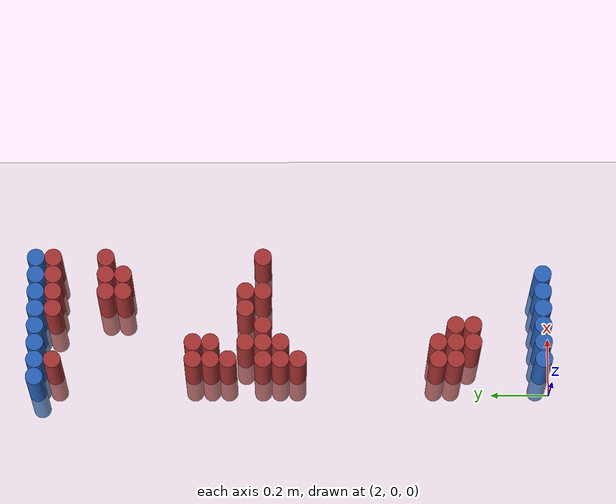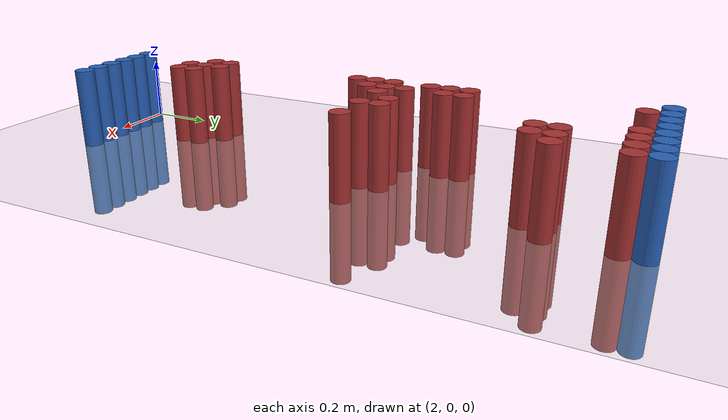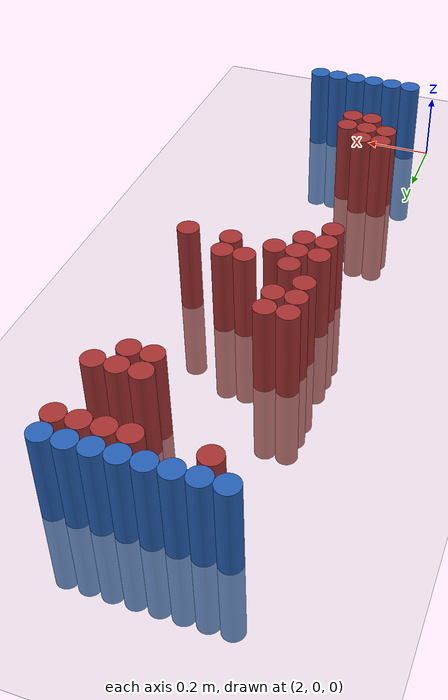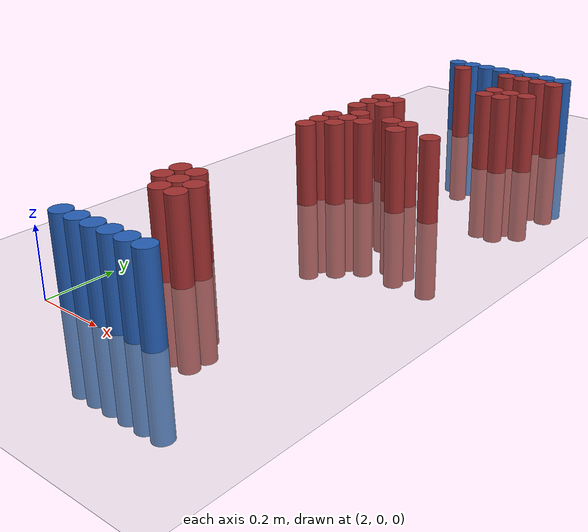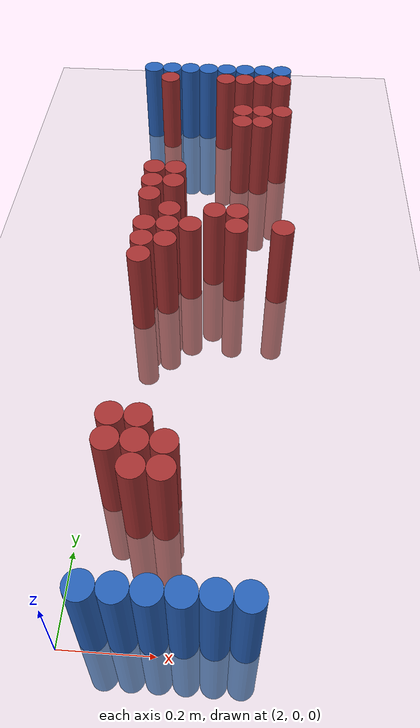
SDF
<sdf version="1.6">
 <world name="default">
  <model name="ground_plane">
   <static>1</static>
   <link name="link">
    <collision name="collision">
     <geometry><plane><normal>0 0 1</normal><size>100 100</size></plane></geometry>
     <surface><friction><ode><mu>100</mu><mu2>50</mu2></ode></friction></surface>
    </collision>
    <visual name="visual">
     <cast_shadows>0</cast_shadows>
     <geometry><plane><normal>0 0 1</normal><size>100 100</size></plane></geometry>
     <material>
      <script><uri>file://media/materials/scripts/gazebo.material</uri><name>Gazebo/Grey</name></script>
     </material>
    </visual>
   </link>
  </model>
  <model name="unit_cylinder_94">
   <static>1</static>
   <pose>2.010000 1.770000 0.000000 0.000000 0.000000 0.000000</pose>
   <link name="link">
    <inertial>
     <mass>1</mass>
     <inertia><ixx>0.145833</ixx><ixy>0</ixy><ixz>0</ixz><iyy>0.145833</iyy><iyz>0</iyz><izz>0.125</izz></inertia>
    </inertial>
    <collision name="collision">
     <geometry><cylinder><radius>0.030000</radius><length>0.5</length></cylinder></geometry>
    </collision>
    <visual name="visual">
     <geometry><cylinder><radius>0.030000</radius><length>0.5</length></cylinder></geometry>
     <material>
      <ambient>0.152000 0.379000 0.720000 1</ambient>
      <diffuse>0.152000 0.379000 0.720000 1</diffuse>
     </material>
     <material>
      <script><name>Gazebo/Grey</name><uri>file://media/materials/scripts/gazebo.material</uri></script>
     </material>
    </visual>
   </link>
  </model>
  <model name="unit_cylinder_95">
   <static>1</static>
   <pose>2.070000 1.770000 0.000000 0.000000 0.000000 0.000000</pose>
   <link name="link">
    <inertial>
     <mass>1</mass>
     <inertia><ixx>0.145833</ixx><ixy>0</ixy><ixz>0</ixz><iyy>0.145833</iyy><iyz>0</iyz><izz>0.125</izz></inertia>
    </inertial>
    <collision name="collision">
     <geometry><cylinder><radius>0.030000</radius><length>0.5</length></cylinder></geometry>
    </collision>
    <visual name="visual">
     <geometry><cylinder><radius>0.030000</radius><length>0.5</length></cylinder></geometry>
     <material>
      <ambient>0.152000 0.379000 0.720000 1</ambient>
      <diffuse>0.152000 0.379000 0.720000 1</diffuse>
     </material>
     <material>
      <script><name>Gazebo/Grey</name><uri>file://media/materials/scripts/gazebo.material</uri></script>
     </material>
    </visual>
   </link>
  </model>
  <model name="unit_cylinder_96">
   <static>1</static>
   <pose>2.130000 1.770000 0.000000 0.000000 0.000000 0.000000</pose>
   <link name="link">
    <inertial>
     <mass>1</mass>
     <inertia><ixx>0.145833</ixx><ixy>0</ixy><ixz>0</ixz><iyy>0.145833</iyy><iyz>0</iyz><izz>0.125</izz></inertia>
    </inertial>
    <collision name="collision">
     <geometry><cylinder><radius>0.030000</radius><length>0.5</length></cylinder></geometry>
    </collision>
    <visual name="visual">
     <geometry><cylinder><radius>0.030000</radius><length>0.5</length></cylinder></geometry>
     <material>
      <ambient>0.152000 0.379000 0.720000 1</ambient>
      <diffuse>0.152000 0.379000 0.720000 1</diffuse>
     </material>
     <material>
      <script><name>Gazebo/Grey</name><uri>file://media/materials/scripts/gazebo.material</uri></script>
     </material>
    </visual>
   </link>
  </model>
  <model name="unit_cylinder_97">
   <static>1</static>
   <pose>2.190000 1.770000 0.000000 0.000000 0.000000 0.000000</pose>
   <link name="link">
    <inertial>
     <mass>1</mass>
     <inertia><ixx>0.145833</ixx><ixy>0</ixy><ixz>0</ixz><iyy>0.145833</iyy><iyz>0</iyz><izz>0.125</izz></inertia>
    </inertial>
    <collision name="collision">
     <geometry><cylinder><radius>0.030000</radius><length>0.5</length></cylinder></geometry>
    </collision>
    <visual name="visual">
     <geometry><cylinder><radius>0.030000</radius><length>0.5</length></cylinder></geometry>
     <material>
      <ambient>0.152000 0.379000 0.720000 1</ambient>
      <diffuse>0.152000 0.379000 0.720000 1</diffuse>
     </material>
     <material>
      <script><name>Gazebo/Grey</name><uri>file://media/materials/scripts/gazebo.material</uri></script>
     </material>
    </visual>
   </link>
  </model>
  <model name="unit_cylinder_98">
   <static>1</static>
   <pose>2.250000 1.770000 0.000000 0.000000 0.000000 0.000000</pose>
   <link name="link">
    <inertial>
     <mass>1</mass>
     <inertia><ixx>0.145833</ixx><ixy>0</ixy><ixz>0</ixz><iyy>0.145833</iyy><iyz>0</iyz><izz>0.125</izz></inertia>
    </inertial>
    <collision name="collision">
     <geometry><cylinder><radius>0.030000</radius><length>0.5</length></cylinder></geometry>
    </collision>
    <visual name="visual">
     <geometry><cylinder><radius>0.030000</radius><length>0.5</length></cylinder></geometry>
     <material>
      <ambient>0.152000 0.379000 0.720000 1</ambient>
      <diffuse>0.152000 0.379000 0.720000 1</diffuse>
     </material>
     <material>
      <script><name>Gazebo/Grey</name><uri>file://media/materials/scripts/gazebo.material</uri></script>
     </material>
    </visual>
   </link>
  </model>
  <model name="unit_cylinder_99">
   <static>1</static>
   <pose>2.310000 1.770000 0.000000 0.000000 0.000000 0.000000</pose>
   <link name="link">
    <inertial>
     <mass>1</mass>
     <inertia><ixx>0.145833</ixx><ixy>0</ixy><ixz>0</ixz><iyy>0.145833</iyy><iyz>0</iyz><izz>0.125</izz></inertia>
    </inertial>
    <collision name="collision">
     <geometry><cylinder><radius>0.030000</radius><length>0.5</length></cylinder></geometry>
    </collision>
    <visual name="visual">
     <geometry><cylinder><radius>0.030000</radius><length>0.5</length></cylinder></geometry>
     <material>
      <ambient>0.152000 0.379000 0.720000 1</ambient>
      <diffuse>0.152000 0.379000 0.720000 1</diffuse>
     </material>
     <material>
      <script><name>Gazebo/Grey</name><uri>file://media/materials/scripts/gazebo.material</uri></script>
     </material>
    </visual>
   </link>
  </model>
  <model name="unit_cylinder_100">
   <static>1</static>
   <pose>2.370000 1.770000 0.000000 0.000000 0.000000 0.000000</pose>
   <link name="link">
    <inertial>
     <mass>1</mass>
     <inertia><ixx>0.145833</ixx><ixy>0</ixy><ixz>0</ixz><iyy>0.145833</iyy><iyz>0</iyz><izz>0.125</izz></inertia>
    </inertial>
    <collision name="collision">
     <geometry><cylinder><radius>0.030000</radius><length>0.5</length></cylinder></geometry>
    </collision>
    <visual name="visual">
     <geometry><cylinder><radius>0.030000</radius><length>0.5</length></cylinder></geometry>
     <material>
      <ambient>0.152000 0.379000 0.720000 1</ambient>
      <diffuse>0.152000 0.379000 0.720000 1</diffuse>
     </material>
     <material>
      <script><name>Gazebo/Grey</name><uri>file://media/materials/scripts/gazebo.material</uri></script>
     </material>
    </visual>
   </link>
  </model>
  <model name="unit_cylinder_101">
   <static>1</static>
   <pose>2.430000 1.770000 0.000000 0.000000 0.000000 0.000000</pose>
   <link name="link">
    <inertial>
     <mass>1</mass>
     <inertia><ixx>0.145833</ixx><ixy>0</ixy><ixz>0</ixz><iyy>0.145833</iyy><iyz>0</iyz><izz>0.125</izz></inertia>
    </inertial>
    <collision name="collision">
     <geometry><cylinder><radius>0.030000</radius><length>0.5</length></cylinder></geometry>
    </collision>
    <visual name="visual">
     <geometry><cylinder><radius>0.030000</radius><length>0.5</length></cylinder></geometry>
     <material>
      <ambient>0.152000 0.379000 0.720000 1</ambient>
      <diffuse>0.152000 0.379000 0.720000 1</diffuse>
     </material>
     <material>
      <script><name>Gazebo/Grey</name><uri>file://media/materials/scripts/gazebo.material</uri></script>
     </material>
    </visual>
   </link>
  </model>
  <model name="unit_cylinder_125">
   <static>1</static>
   <pose>2.070000 1.710000 0.000000 0.000000 0.000000 0.000000</pose>
   <link name="link">
    <inertial>
     <mass>1</mass>
     <inertia><ixx>0.145833</ixx><ixy>0</ixy><ixz>0</ixz><iyy>0.145833</iyy><iyz>0</iyz><izz>0.125</izz></inertia>
    </inertial>
    <collision name="collision">
     <geometry><cylinder><radius>0.030000</radius><length>0.5</length></cylinder></geometry>
    </collision>
    <visual name="visual">
     <geometry><cylinder><radius>0.030000</radius><length>0.5</length></cylinder></geometry>
     <material>
      <ambient>0.648000 0.192000 0.192000 1</ambient>
      <diffuse>0.648000 0.192000 0.192000 1</diffuse>
     </material>
     <material>
      <script><name>Gazebo/Grey</name><uri>file://media/materials/scripts/gazebo.material</uri></script>
     </material>
    </visual>
   </link>
  </model>
  <model name="unit_cylinder_126">
   <static>1</static>
   <pose>2.250000 1.710000 0.000000 0.000000 0.000000 0.000000</pose>
   <link name="link">
    <inertial>
     <mass>1</mass>
     <inertia><ixx>0.145833</ixx><ixy>0</ixy><ixz>0</ixz><iyy>0.145833</iyy><iyz>0</iyz><izz>0.125</izz></inertia>
    </inertial>
    <collision name="collision">
     <geometry><cylinder><radius>0.030000</radius><length>0.5</length></cylinder></geometry>
    </collision>
    <visual name="visual">
     <geometry><cylinder><radius>0.030000</radius><length>0.5</length></cylinder></geometry>
     <material>
      <ambient>0.648000 0.192000 0.192000 1</ambient>
      <diffuse>0.648000 0.192000 0.192000 1</diffuse>
     </material>
     <material>
      <script><name>Gazebo/Grey</name><uri>file://media/materials/scripts/gazebo.material</uri></script>
     </material>
    </visual>
   </link>
  </model>
  <model name="unit_cylinder_127">
   <static>1</static>
   <pose>2.310000 1.710000 0.000000 0.000000 0.000000 0.000000</pose>
   <link name="link">
    <inertial>
     <mass>1</mass>
     <inertia><ixx>0.145833</ixx><ixy>0</ixy><ixz>0</ixz><iyy>0.145833</iyy><iyz>0</iyz><izz>0.125</izz></inertia>
    </inertial>
    <collision name="collision">
     <geometry><cylinder><radius>0.030000</radius><length>0.5</length></cylinder></geometry>
    </collision>
    <visual name="visual">
     <geometry><cylinder><radius>0.030000</radius><length>0.5</length></cylinder></geometry>
     <material>
      <ambient>0.648000 0.192000 0.192000 1</ambient>
      <diffuse>0.648000 0.192000 0.192000 1</diffuse>
     </material>
     <material>
      <script><name>Gazebo/Grey</name><uri>file://media/materials/scripts/gazebo.material</uri></script>
     </material>
    </visual>
   </link>
  </model>
  <model name="unit_cylinder_128">
   <static>1</static>
   <pose>2.370000 1.710000 0.000000 0.000000 0.000000 0.000000</pose>
   <link name="link">
    <inertial>
     <mass>1</mass>
     <inertia><ixx>0.145833</ixx><ixy>0</ixy><ixz>0</ixz><iyy>0.145833</iyy><iyz>0</iyz><izz>0.125</izz></inertia>
    </inertial>
    <collision name="collision">
     <geometry><cylinder><radius>0.030000</radius><length>0.5</length></cylinder></geometry>
    </collision>
    <visual name="visual">
     <geometry><cylinder><radius>0.030000</radius><length>0.5</length></cylinder></geometry>
     <material>
      <ambient>0.648000 0.192000 0.192000 1</ambient>
      <diffuse>0.648000 0.192000 0.192000 1</diffuse>
     </material>
     <material>
      <script><name>Gazebo/Grey</name><uri>file://media/materials/scripts/gazebo.material</uri></script>
     </material>
    </visual>
   </link>
  </model>
  <model name="unit_cylinder_129">
   <static>1</static>
   <pose>2.430000 1.710000 0.000000 0.000000 0.000000 0.000000</pose>
   <link name="link">
    <inertial>
     <mass>1</mass>
     <inertia><ixx>0.145833</ixx><ixy>0</ixy><ixz>0</ixz><iyy>0.145833</iyy><iyz>0</iyz><izz>0.125</izz></inertia>
    </inertial>
    <collision name="collision">
     <geometry><cylinder><radius>0.030000</radius><length>0.5</length></cylinder></geometry>
    </collision>
    <visual name="visual">
     <geometry><cylinder><radius>0.030000</radius><length>0.5</length></cylinder></geometry>
     <material>
      <ambient>0.648000 0.192000 0.192000 1</ambient>
      <diffuse>0.648000 0.192000 0.192000 1</diffuse>
     </material>
     <material>
      <script><name>Gazebo/Grey</name><uri>file://media/materials/scripts/gazebo.material</uri></script>
     </material>
    </visual>
   </link>
  </model>
  <model name="unit_cylinder_154">
   <static>1</static>
   <pose>2.310000 1.530000 0.000000 0.000000 0.000000 0.000000</pose>
   <link name="link">
    <inertial>
     <mass>1</mass>
     <inertia><ixx>0.145833</ixx><ixy>0</ixy><ixz>0</ixz><iyy>0.145833</iyy><iyz>0</iyz><izz>0.125</izz></inertia>
    </inertial>
    <collision name="collision">
     <geometry><cylinder><radius>0.030000</radius><length>0.5</length></cylinder></geometry>
    </collision>
    <visual name="visual">
     <geometry><cylinder><radius>0.030000</radius><length>0.5</length></cylinder></geometry>
     <material>
      <ambient>0.648000 0.192000 0.192000 1</ambient>
      <diffuse>0.648000 0.192000 0.192000 1</diffuse>
     </material>
     <material>
      <script><name>Gazebo/Grey</name><uri>file://media/materials/scripts/gazebo.material</uri></script>
     </material>
    </visual>
   </link>
  </model>
  <model name="unit_cylinder_155">
   <static>1</static>
   <pose>2.370000 1.530000 0.000000 0.000000 0.000000 0.000000</pose>
   <link name="link">
    <inertial>
     <mass>1</mass>
     <inertia><ixx>0.145833</ixx><ixy>0</ixy><ixz>0</ixz><iyy>0.145833</iyy><iyz>0</iyz><izz>0.125</izz></inertia>
    </inertial>
    <collision name="collision">
     <geometry><cylinder><radius>0.030000</radius><length>0.5</length></cylinder></geometry>
    </collision>
    <visual name="visual">
     <geometry><cylinder><radius>0.030000</radius><length>0.5</length></cylinder></geometry>
     <material>
      <ambient>0.648000 0.192000 0.192000 1</ambient>
      <diffuse>0.648000 0.192000 0.192000 1</diffuse>
     </material>
     <material>
      <script><name>Gazebo/Grey</name><uri>file://media/materials/scripts/gazebo.material</uri></script>
     </material>
    </visual>
   </link>
  </model>
  <model name="unit_cylinder_156">
   <static>1</static>
   <pose>2.430000 1.530000 0.000000 0.000000 0.000000 0.000000</pose>
   <link name="link">
    <inertial>
     <mass>1</mass>
     <inertia><ixx>0.145833</ixx><ixy>0</ixy><ixz>0</ixz><iyy>0.145833</iyy><iyz>0</iyz><izz>0.125</izz></inertia>
    </inertial>
    <collision name="collision">
     <geometry><cylinder><radius>0.030000</radius><length>0.5</length></cylinder></geometry>
    </collision>
    <visual name="visual">
     <geometry><cylinder><radius>0.030000</radius><length>0.5</length></cylinder></geometry>
     <material>
      <ambient>0.648000 0.192000 0.192000 1</ambient>
      <diffuse>0.648000 0.192000 0.192000 1</diffuse>
     </material>
     <material>
      <script><name>Gazebo/Grey</name><uri>file://media/materials/scripts/gazebo.material</uri></script>
     </material>
    </visual>
   </link>
  </model>
  <model name="unit_cylinder_165">
   <static>1</static>
   <pose>2.310000 1.470000 0.000000 0.000000 0.000000 0.000000</pose>
   <link name="link">
    <inertial>
     <mass>1</mass>
     <inertia><ixx>0.145833</ixx><ixy>0</ixy><ixz>0</ixz><iyy>0.145833</iyy><iyz>0</iyz><izz>0.125</izz></inertia>
    </inertial>
    <collision name="collision">
     <geometry><cylinder><radius>0.030000</radius><length>0.5</length></cylinder></geometry>
    </collision>
    <visual name="visual">
     <geometry><cylinder><radius>0.030000</radius><length>0.5</length></cylinder></geometry>
     <material>
      <ambient>0.648000 0.192000 0.192000 1</ambient>
      <diffuse>0.648000 0.192000 0.192000 1</diffuse>
     </material>
     <material>
      <script><name>Gazebo/Grey</name><uri>file://media/materials/scripts/gazebo.material</uri></script>
     </material>
    </visual>
   </link>
  </model>
  <model name="unit_cylinder_166">
   <static>1</static>
   <pose>2.370000 1.470000 0.000000 0.000000 0.000000 0.000000</pose>
   <link name="link">
    <inertial>
     <mass>1</mass>
     <inertia><ixx>0.145833</ixx><ixy>0</ixy><ixz>0</ixz><iyy>0.145833</iyy><iyz>0</iyz><izz>0.125</izz></inertia>
    </inertial>
    <collision name="collision">
     <geometry><cylinder><radius>0.030000</radius><length>0.5</length></cylinder></geometry>
    </collision>
    <visual name="visual">
     <geometry><cylinder><radius>0.030000</radius><length>0.5</length></cylinder></geometry>
     <material>
      <ambient>0.648000 0.192000 0.192000 1</ambient>
      <diffuse>0.648000 0.192000 0.192000 1</diffuse>
     </material>
     <material>
      <script><name>Gazebo/Grey</name><uri>file://media/materials/scripts/gazebo.material</uri></script>
     </material>
    </visual>
   </link>
  </model>
  <model name="unit_cylinder_183">
   <static>1</static>
   <pose>2.070000 1.230000 0.000000 0.000000 0.000000 0.000000</pose>
   <link name="link">
    <inertial>
     <mass>1</mass>
     <inertia><ixx>0.145833</ixx><ixy>0</ixy><ixz>0</ixz><iyy>0.145833</iyy><iyz>0</iyz><izz>0.125</izz></inertia>
    </inertial>
    <collision name="collision">
     <geometry><cylinder><radius>0.030000</radius><length>0.5</length></cylinder></geometry>
    </collision>
    <visual name="visual">
     <geometry><cylinder><radius>0.030000</radius><length>0.5</length></cylinder></geometry>
     <material>
      <ambient>0.648000 0.192000 0.192000 1</ambient>
      <diffuse>0.648000 0.192000 0.192000 1</diffuse>
     </material>
     <material>
      <script><name>Gazebo/Grey</name><uri>file://media/materials/scripts/gazebo.material</uri></script>
     </material>
    </visual>
   </link>
  </model>
  <model name="unit_cylinder_184">
   <static>1</static>
   <pose>2.130000 1.230000 0.000000 0.000000 0.000000 0.000000</pose>
   <link name="link">
    <inertial>
     <mass>1</mass>
     <inertia><ixx>0.145833</ixx><ixy>0</ixy><ixz>0</ixz><iyy>0.145833</iyy><iyz>0</iyz><izz>0.125</izz></inertia>
    </inertial>
    <collision name="collision">
     <geometry><cylinder><radius>0.030000</radius><length>0.5</length></cylinder></geometry>
    </collision>
    <visual name="visual">
     <geometry><cylinder><radius>0.030000</radius><length>0.5</length></cylinder></geometry>
     <material>
      <ambient>0.648000 0.192000 0.192000 1</ambient>
      <diffuse>0.648000 0.192000 0.192000 1</diffuse>
     </material>
     <material>
      <script><name>Gazebo/Grey</name><uri>file://media/materials/scripts/gazebo.material</uri></script>
     </material>
    </visual>
   </link>
  </model>
  <model name="unit_cylinder_190">
   <static>1</static>
   <pose>2.070000 1.170000 0.000000 0.000000 0.000000 0.000000</pose>
   <link name="link">
    <inertial>
     <mass>1</mass>
     <inertia><ixx>0.145833</ixx><ixy>0</ixy><ixz>0</ixz><iyy>0.145833</iyy><iyz>0</iyz><izz>0.125</izz></inertia>
    </inertial>
    <collision name="collision">
     <geometry><cylinder><radius>0.030000</radius><length>0.5</length></cylinder></geometry>
    </collision>
    <visual name="visual">
     <geometry><cylinder><radius>0.030000</radius><length>0.5</length></cylinder></geometry>
     <material>
      <ambient>0.648000 0.192000 0.192000 1</ambient>
      <diffuse>0.648000 0.192000 0.192000 1</diffuse>
     </material>
     <material>
      <script><name>Gazebo/Grey</name><uri>file://media/materials/scripts/gazebo.material</uri></script>
     </material>
    </visual>
   </link>
  </model>
  <model name="unit_cylinder_191">
   <static>1</static>
   <pose>2.130000 1.170000 0.000000 0.000000 0.000000 0.000000</pose>
   <link name="link">
    <inertial>
     <mass>1</mass>
     <inertia><ixx>0.145833</ixx><ixy>0</ixy><ixz>0</ixz><iyy>0.145833</iyy><iyz>0</iyz><izz>0.125</izz></inertia>
    </inertial>
    <collision name="collision">
     <geometry><cylinder><radius>0.030000</radius><length>0.5</length></cylinder></geometry>
    </collision>
    <visual name="visual">
     <geometry><cylinder><radius>0.030000</radius><length>0.5</length></cylinder></geometry>
     <material>
      <ambient>0.648000 0.192000 0.192000 1</ambient>
      <diffuse>0.648000 0.192000 0.192000 1</diffuse>
     </material>
     <material>
      <script><name>Gazebo/Grey</name><uri>file://media/materials/scripts/gazebo.material</uri></script>
     </material>
    </visual>
   </link>
  </model>
  <model name="unit_cylinder_201">
   <static>1</static>
   <pose>2.070000 1.110000 0.000000 0.000000 0.000000 0.000000</pose>
   <link name="link">
    <inertial>
     <mass>1</mass>
     <inertia><ixx>0.145833</ixx><ixy>0</ixy><ixz>0</ixz><iyy>0.145833</iyy><iyz>0</iyz><izz>0.125</izz></inertia>
    </inertial>
    <collision name="collision">
     <geometry><cylinder><radius>0.030000</radius><length>0.5</length></cylinder></geometry>
    </collision>
    <visual name="visual">
     <geometry><cylinder><radius>0.030000</radius><length>0.5</length></cylinder></geometry>
     <material>
      <ambient>0.648000 0.192000 0.192000 1</ambient>
      <diffuse>0.648000 0.192000 0.192000 1</diffuse>
     </material>
     <material>
      <script><name>Gazebo/Grey</name><uri>file://media/materials/scripts/gazebo.material</uri></script>
     </material>
    </visual>
   </link>
  </model>
  <model name="unit_cylinder_210">
   <static>1</static>
   <pose>2.130000 1.050000 0.000000 0.000000 0.000000 0.000000</pose>
   <link name="link">
    <inertial>
     <mass>1</mass>
     <inertia><ixx>0.145833</ixx><ixy>0</ixy><ixz>0</ixz><iyy>0.145833</iyy><iyz>0</iyz><izz>0.125</izz></inertia>
    </inertial>
    <collision name="collision">
     <geometry><cylinder><radius>0.030000</radius><length>0.5</length></cylinder></geometry>
    </collision>
    <visual name="visual">
     <geometry><cylinder><radius>0.030000</radius><length>0.5</length></cylinder></geometry>
     <material>
      <ambient>0.648000 0.192000 0.192000 1</ambient>
      <diffuse>0.648000 0.192000 0.192000 1</diffuse>
     </material>
     <material>
      <script><name>Gazebo/Grey</name><uri>file://media/materials/scripts/gazebo.material</uri></script>
     </material>
    </visual>
   </link>
  </model>
  <model name="unit_cylinder_211">
   <static>1</static>
   <pose>2.250000 1.050000 0.000000 0.000000 0.000000 0.000000</pose>
   <link name="link">
    <inertial>
     <mass>1</mass>
     <inertia><ixx>0.145833</ixx><ixy>0</ixy><ixz>0</ixz><iyy>0.145833</iyy><iyz>0</iyz><izz>0.125</izz></inertia>
    </inertial>
    <collision name="collision">
     <geometry><cylinder><radius>0.030000</radius><length>0.5</length></cylinder></geometry>
    </collision>
    <visual name="visual">
     <geometry><cylinder><radius>0.030000</radius><length>0.5</length></cylinder></geometry>
     <material>
      <ambient>0.648000 0.192000 0.192000 1</ambient>
      <diffuse>0.648000 0.192000 0.192000 1</diffuse>
     </material>
     <material>
      <script><name>Gazebo/Grey</name><uri>file://media/materials/scripts/gazebo.material</uri></script>
     </material>
    </visual>
   </link>
  </model>
  <model name="unit_cylinder_212">
   <static>1</static>
   <pose>2.310000 1.050000 0.000000 0.000000 0.000000 0.000000</pose>
   <link name="link">
    <inertial>
     <mass>1</mass>
     <inertia><ixx>0.145833</ixx><ixy>0</ixy><ixz>0</ixz><iyy>0.145833</iyy><iyz>0</iyz><izz>0.125</izz></inertia>
    </inertial>
    <collision name="collision">
     <geometry><cylinder><radius>0.030000</radius><length>0.5</length></cylinder></geometry>
    </collision>
    <visual name="visual">
     <geometry><cylinder><radius>0.030000</radius><length>0.5</length></cylinder></geometry>
     <material>
      <ambient>0.648000 0.192000 0.192000 1</ambient>
      <diffuse>0.648000 0.192000 0.192000 1</diffuse>
     </material>
     <material>
      <script><name>Gazebo/Grey</name><uri>file://media/materials/scripts/gazebo.material</uri></script>
     </material>
    </visual>
   </link>
  </model>
  <model name="unit_cylinder_219">
   <static>1</static>
   <pose>2.070000 0.990000 0.000000 0.000000 0.000000 0.000000</pose>
   <link name="link">
    <inertial>
     <mass>1</mass>
     <inertia><ixx>0.145833</ixx><ixy>0</ixy><ixz>0</ixz><iyy>0.145833</iyy><iyz>0</iyz><izz>0.125</izz></inertia>
    </inertial>
    <collision name="collision">
     <geometry><cylinder><radius>0.030000</radius><length>0.5</length></cylinder></geometry>
    </collision>
    <visual name="visual">
     <geometry><cylinder><radius>0.030000</radius><length>0.5</length></cylinder></geometry>
     <material>
      <ambient>0.648000 0.192000 0.192000 1</ambient>
      <diffuse>0.648000 0.192000 0.192000 1</diffuse>
     </material>
     <material>
      <script><name>Gazebo/Grey</name><uri>file://media/materials/scripts/gazebo.material</uri></script>
     </material>
    </visual>
   </link>
  </model>
  <model name="unit_cylinder_220">
   <static>1</static>
   <pose>2.130000 0.990000 0.000000 0.000000 0.000000 0.000000</pose>
   <link name="link">
    <inertial>
     <mass>1</mass>
     <inertia><ixx>0.145833</ixx><ixy>0</ixy><ixz>0</ixz><iyy>0.145833</iyy><iyz>0</iyz><izz>0.125</izz></inertia>
    </inertial>
    <collision name="collision">
     <geometry><cylinder><radius>0.030000</radius><length>0.5</length></cylinder></geometry>
    </collision>
    <visual name="visual">
     <geometry><cylinder><radius>0.030000</radius><length>0.5</length></cylinder></geometry>
     <material>
      <ambient>0.648000 0.192000 0.192000 1</ambient>
      <diffuse>0.648000 0.192000 0.192000 1</diffuse>
     </material>
     <material>
      <script><name>Gazebo/Grey</name><uri>file://media/materials/scripts/gazebo.material</uri></script>
     </material>
    </visual>
   </link>
  </model>
  <model name="unit_cylinder_221">
   <static>1</static>
   <pose>2.190000 0.990000 0.000000 0.000000 0.000000 0.000000</pose>
   <link name="link">
    <inertial>
     <mass>1</mass>
     <inertia><ixx>0.145833</ixx><ixy>0</ixy><ixz>0</ixz><iyy>0.145833</iyy><iyz>0</iyz><izz>0.125</izz></inertia>
    </inertial>
    <collision name="collision">
     <geometry><cylinder><radius>0.030000</radius><length>0.5</length></cylinder></geometry>
    </collision>
    <visual name="visual">
     <geometry><cylinder><radius>0.030000</radius><length>0.5</length></cylinder></geometry>
     <material>
      <ambient>0.648000 0.192000 0.192000 1</ambient>
      <diffuse>0.648000 0.192000 0.192000 1</diffuse>
     </material>
     <material>
      <script><name>Gazebo/Grey</name><uri>file://media/materials/scripts/gazebo.material</uri></script>
     </material>
    </visual>
   </link>
  </model>
  <model name="unit_cylinder_222">
   <static>1</static>
   <pose>2.310000 0.990000 0.000000 0.000000 0.000000 0.000000</pose>
   <link name="link">
    <inertial>
     <mass>1</mass>
     <inertia><ixx>0.145833</ixx><ixy>0</ixy><ixz>0</ixz><iyy>0.145833</iyy><iyz>0</iyz><izz>0.125</izz></inertia>
    </inertial>
    <collision name="collision">
     <geometry><cylinder><radius>0.030000</radius><length>0.5</length></cylinder></geometry>
    </collision>
    <visual name="visual">
     <geometry><cylinder><radius>0.030000</radius><length>0.5</length></cylinder></geometry>
     <material>
      <ambient>0.648000 0.192000 0.192000 1</ambient>
      <diffuse>0.648000 0.192000 0.192000 1</diffuse>
     </material>
     <material>
      <script><name>Gazebo/Grey</name><uri>file://media/materials/scripts/gazebo.material</uri></script>
     </material>
    </visual>
   </link>
  </model>
  <model name="unit_cylinder_223">
   <static>1</static>
   <pose>2.430000 0.990000 0.000000 0.000000 0.000000 0.000000</pose>
   <link name="link">
    <inertial>
     <mass>1</mass>
     <inertia><ixx>0.145833</ixx><ixy>0</ixy><ixz>0</ixz><iyy>0.145833</iyy><iyz>0</iyz><izz>0.125</izz></inertia>
    </inertial>
    <collision name="collision">
     <geometry><cylinder><radius>0.030000</radius><length>0.5</length></cylinder></geometry>
    </collision>
    <visual name="visual">
     <geometry><cylinder><radius>0.030000</radius><length>0.5</length></cylinder></geometry>
     <material>
      <ambient>0.648000 0.192000 0.192000 1</ambient>
      <diffuse>0.648000 0.192000 0.192000 1</diffuse>
     </material>
     <material>
      <script><name>Gazebo/Grey</name><uri>file://media/materials/scripts/gazebo.material</uri></script>
     </material>
    </visual>
   </link>
  </model>
  <model name="unit_cylinder_230">
   <static>1</static>
   <pose>2.070000 0.930000 0.000000 0.000000 0.000000 0.000000</pose>
   <link name="link">
    <inertial>
     <mass>1</mass>
     <inertia><ixx>0.145833</ixx><ixy>0</ixy><ixz>0</ixz><iyy>0.145833</iyy><iyz>0</iyz><izz>0.125</izz></inertia>
    </inertial>
    <collision name="collision">
     <geometry><cylinder><radius>0.030000</radius><length>0.5</length></cylinder></geometry>
    </collision>
    <visual name="visual">
     <geometry><cylinder><radius>0.030000</radius><length>0.5</length></cylinder></geometry>
     <material>
      <ambient>0.648000 0.192000 0.192000 1</ambient>
      <diffuse>0.648000 0.192000 0.192000 1</diffuse>
     </material>
     <material>
      <script><name>Gazebo/Grey</name><uri>file://media/materials/scripts/gazebo.material</uri></script>
     </material>
    </visual>
   </link>
  </model>
  <model name="unit_cylinder_231">
   <static>1</static>
   <pose>2.130000 0.930000 0.000000 0.000000 0.000000 0.000000</pose>
   <link name="link">
    <inertial>
     <mass>1</mass>
     <inertia><ixx>0.145833</ixx><ixy>0</ixy><ixz>0</ixz><iyy>0.145833</iyy><iyz>0</iyz><izz>0.125</izz></inertia>
    </inertial>
    <collision name="collision">
     <geometry><cylinder><radius>0.030000</radius><length>0.5</length></cylinder></geometry>
    </collision>
    <visual name="visual">
     <geometry><cylinder><radius>0.030000</radius><length>0.5</length></cylinder></geometry>
     <material>
      <ambient>0.648000 0.192000 0.192000 1</ambient>
      <diffuse>0.648000 0.192000 0.192000 1</diffuse>
     </material>
     <material>
      <script><name>Gazebo/Grey</name><uri>file://media/materials/scripts/gazebo.material</uri></script>
     </material>
    </visual>
   </link>
  </model>
  <model name="unit_cylinder_237">
   <static>1</static>
   <pose>2.070000 0.870000 0.000000 0.000000 0.000000 0.000000</pose>
   <link name="link">
    <inertial>
     <mass>1</mass>
     <inertia><ixx>0.145833</ixx><ixy>0</ixy><ixz>0</ixz><iyy>0.145833</iyy><iyz>0</iyz><izz>0.125</izz></inertia>
    </inertial>
    <collision name="collision">
     <geometry><cylinder><radius>0.030000</radius><length>0.5</length></cylinder></geometry>
    </collision>
    <visual name="visual">
     <geometry><cylinder><radius>0.030000</radius><length>0.5</length></cylinder></geometry>
     <material>
      <ambient>0.648000 0.192000 0.192000 1</ambient>
      <diffuse>0.648000 0.192000 0.192000 1</diffuse>
     </material>
     <material>
      <script><name>Gazebo/Grey</name><uri>file://media/materials/scripts/gazebo.material</uri></script>
     </material>
    </visual>
   </link>
  </model>
  <model name="unit_cylinder_259">
   <static>1</static>
   <pose>2.070000 0.390000 0.000000 0.000000 0.000000 0.000000</pose>
   <link name="link">
    <inertial>
     <mass>1</mass>
     <inertia><ixx>0.145833</ixx><ixy>0</ixy><ixz>0</ixz><iyy>0.145833</iyy><iyz>0</iyz><izz>0.125</izz></inertia>
    </inertial>
    <collision name="collision">
     <geometry><cylinder><radius>0.030000</radius><length>0.5</length></cylinder></geometry>
    </collision>
    <visual name="visual">
     <geometry><cylinder><radius>0.030000</radius><length>0.5</length></cylinder></geometry>
     <material>
      <ambient>0.648000 0.192000 0.192000 1</ambient>
      <diffuse>0.648000 0.192000 0.192000 1</diffuse>
     </material>
     <material>
      <script><name>Gazebo/Grey</name><uri>file://media/materials/scripts/gazebo.material</uri></script>
     </material>
    </visual>
   </link>
  </model>
  <model name="unit_cylinder_260">
   <static>1</static>
   <pose>2.130000 0.390000 0.000000 0.000000 0.000000 0.000000</pose>
   <link name="link">
    <inertial>
     <mass>1</mass>
     <inertia><ixx>0.145833</ixx><ixy>0</ixy><ixz>0</ixz><iyy>0.145833</iyy><iyz>0</iyz><izz>0.125</izz></inertia>
    </inertial>
    <collision name="collision">
     <geometry><cylinder><radius>0.030000</radius><length>0.5</length></cylinder></geometry>
    </collision>
    <visual name="visual">
     <geometry><cylinder><radius>0.030000</radius><length>0.5</length></cylinder></geometry>
     <material>
      <ambient>0.648000 0.192000 0.192000 1</ambient>
      <diffuse>0.648000 0.192000 0.192000 1</diffuse>
     </material>
     <material>
      <script><name>Gazebo/Grey</name><uri>file://media/materials/scripts/gazebo.material</uri></script>
     </material>
    </visual>
   </link>
  </model>
  <model name="unit_cylinder_267">
   <static>1</static>
   <pose>2.070000 0.330000 0.000000 0.000000 0.000000 0.000000</pose>
   <link name="link">
    <inertial>
     <mass>1</mass>
     <inertia><ixx>0.145833</ixx><ixy>0</ixy><ixz>0</ixz><iyy>0.145833</iyy><iyz>0</iyz><izz>0.125</izz></inertia>
    </inertial>
    <collision name="collision">
     <geometry><cylinder><radius>0.030000</radius><length>0.5</length></cylinder></geometry>
    </collision>
    <visual name="visual">
     <geometry><cylinder><radius>0.030000</radius><length>0.5</length></cylinder></geometry>
     <material>
      <ambient>0.648000 0.192000 0.192000 1</ambient>
      <diffuse>0.648000 0.192000 0.192000 1</diffuse>
     </material>
     <material>
      <script><name>Gazebo/Grey</name><uri>file://media/materials/scripts/gazebo.material</uri></script>
     </material>
    </visual>
   </link>
  </model>
  <model name="unit_cylinder_268">
   <static>1</static>
   <pose>2.130000 0.330000 0.000000 0.000000 0.000000 0.000000</pose>
   <link name="link">
    <inertial>
     <mass>1</mass>
     <inertia><ixx>0.145833</ixx><ixy>0</ixy><ixz>0</ixz><iyy>0.145833</iyy><iyz>0</iyz><izz>0.125</izz></inertia>
    </inertial>
    <collision name="collision">
     <geometry><cylinder><radius>0.030000</radius><length>0.5</length></cylinder></geometry>
    </collision>
    <visual name="visual">
     <geometry><cylinder><radius>0.030000</radius><length>0.5</length></cylinder></geometry>
     <material>
      <ambient>0.648000 0.192000 0.192000 1</ambient>
      <diffuse>0.648000 0.192000 0.192000 1</diffuse>
     </material>
     <material>
      <script><name>Gazebo/Grey</name><uri>file://media/materials/scripts/gazebo.material</uri></script>
     </material>
    </visual>
   </link>
  </model>
  <model name="unit_cylinder_269">
   <static>1</static>
   <pose>2.190000 0.330000 0.000000 0.000000 0.000000 0.000000</pose>
   <link name="link">
    <inertial>
     <mass>1</mass>
     <inertia><ixx>0.145833</ixx><ixy>0</ixy><ixz>0</ixz><iyy>0.145833</iyy><iyz>0</iyz><izz>0.125</izz></inertia>
    </inertial>
    <collision name="collision">
     <geometry><cylinder><radius>0.030000</radius><length>0.5</length></cylinder></geometry>
    </collision>
    <visual name="visual">
     <geometry><cylinder><radius>0.030000</radius><length>0.5</length></cylinder></geometry>
     <material>
      <ambient>0.648000 0.192000 0.192000 1</ambient>
      <diffuse>0.648000 0.192000 0.192000 1</diffuse>
     </material>
     <material>
      <script><name>Gazebo/Grey</name><uri>file://media/materials/scripts/gazebo.material</uri></script>
     </material>
    </visual>
   </link>
  </model>
  <model name="unit_cylinder_276">
   <static>1</static>
   <pose>2.130000 0.270000 0.000000 0.000000 0.000000 0.000000</pose>
   <link name="link">
    <inertial>
     <mass>1</mass>
     <inertia><ixx>0.145833</ixx><ixy>0</ixy><ixz>0</ixz><iyy>0.145833</iyy><iyz>0</iyz><izz>0.125</izz></inertia>
    </inertial>
    <collision name="collision">
     <geometry><cylinder><radius>0.030000</radius><length>0.5</length></cylinder></geometry>
    </collision>
    <visual name="visual">
     <geometry><cylinder><radius>0.030000</radius><length>0.5</length></cylinder></geometry>
     <material>
      <ambient>0.648000 0.192000 0.192000 1</ambient>
      <diffuse>0.648000 0.192000 0.192000 1</diffuse>
     </material>
     <material>
      <script><name>Gazebo/Grey</name><uri>file://media/materials/scripts/gazebo.material</uri></script>
     </material>
    </visual>
   </link>
  </model>
  <model name="unit_cylinder_277">
   <static>1</static>
   <pose>2.190000 0.270000 0.000000 0.000000 0.000000 0.000000</pose>
   <link name="link">
    <inertial>
     <mass>1</mass>
     <inertia><ixx>0.145833</ixx><ixy>0</ixy><ixz>0</ixz><iyy>0.145833</iyy><iyz>0</iyz><izz>0.125</izz></inertia>
    </inertial>
    <collision name="collision">
     <geometry><cylinder><radius>0.030000</radius><length>0.5</length></cylinder></geometry>
    </collision>
    <visual name="visual">
     <geometry><cylinder><radius>0.030000</radius><length>0.5</length></cylinder></geometry>
     <material>
      <ambient>0.648000 0.192000 0.192000 1</ambient>
      <diffuse>0.648000 0.192000 0.192000 1</diffuse>
     </material>
     <material>
      <script><name>Gazebo/Grey</name><uri>file://media/materials/scripts/gazebo.material</uri></script>
     </material>
    </visual>
   </link>
  </model>
  <model name="unit_cylinder_299">
   <static>1</static>
   <pose>2.070000 0.030000 0.000000 0.000000 0.000000 0.000000</pose>
   <link name="link">
    <inertial>
     <mass>1</mass>
     <inertia><ixx>0.145833</ixx><ixy>0</ixy><ixz>0</ixz><iyy>0.145833</iyy><iyz>0</iyz><izz>0.125</izz></inertia>
    </inertial>
    <collision name="collision">
     <geometry><cylinder><radius>0.030000</radius><length>0.5</length></cylinder></geometry>
    </collision>
    <visual name="visual">
     <geometry><cylinder><radius>0.030000</radius><length>0.5</length></cylinder></geometry>
     <material>
      <ambient>0.152000 0.379000 0.720000 1</ambient>
      <diffuse>0.152000 0.379000 0.720000 1</diffuse>
     </material>
     <material>
      <script><name>Gazebo/Grey</name><uri>file://media/materials/scripts/gazebo.material</uri></script>
     </material>
    </visual>
   </link>
  </model>
  <model name="unit_cylinder_300">
   <static>1</static>
   <pose>2.130000 0.030000 0.000000 0.000000 0.000000 0.000000</pose>
   <link name="link">
    <inertial>
     <mass>1</mass>
     <inertia><ixx>0.145833</ixx><ixy>0</ixy><ixz>0</ixz><iyy>0.145833</iyy><iyz>0</iyz><izz>0.125</izz></inertia>
    </inertial>
    <collision name="collision">
     <geometry><cylinder><radius>0.030000</radius><length>0.5</length></cylinder></geometry>
    </collision>
    <visual name="visual">
     <geometry><cylinder><radius>0.030000</radius><length>0.5</length></cylinder></geometry>
     <material>
      <ambient>0.152000 0.379000 0.720000 1</ambient>
      <diffuse>0.152000 0.379000 0.720000 1</diffuse>
     </material>
     <material>
      <script><name>Gazebo/Grey</name><uri>file://media/materials/scripts/gazebo.material</uri></script>
     </material>
    </visual>
   </link>
  </model>
  <model name="unit_cylinder_301">
   <static>1</static>
   <pose>2.190000 0.030000 0.000000 0.000000 0.000000 0.000000</pose>
   <link name="link">
    <inertial>
     <mass>1</mass>
     <inertia><ixx>0.145833</ixx><ixy>0</ixy><ixz>0</ixz><iyy>0.145833</iyy><iyz>0</iyz><izz>0.125</izz></inertia>
    </inertial>
    <collision name="collision">
     <geometry><cylinder><radius>0.030000</radius><length>0.5</length></cylinder></geometry>
    </collision>
    <visual name="visual">
     <geometry><cylinder><radius>0.030000</radius><length>0.5</length></cylinder></geometry>
     <material>
      <ambient>0.152000 0.379000 0.720000 1</ambient>
      <diffuse>0.152000 0.379000 0.720000 1</diffuse>
     </material>
     <material>
      <script><name>Gazebo/Grey</name><uri>file://media/materials/scripts/gazebo.material</uri></script>
     </material>
    </visual>
   </link>
  </model>
  <model name="unit_cylinder_302">
   <static>1</static>
   <pose>2.250000 0.030000 0.000000 0.000000 0.000000 0.000000</pose>
   <link name="link">
    <inertial>
     <mass>1</mass>
     <inertia><ixx>0.145833</ixx><ixy>0</ixy><ixz>0</ixz><iyy>0.145833</iyy><iyz>0</iyz><izz>0.125</izz></inertia>
    </inertial>
    <collision name="collision">
     <geometry><cylinder><radius>0.030000</radius><length>0.5</length></cylinder></geometry>
    </collision>
    <visual name="visual">
     <geometry><cylinder><radius>0.030000</radius><length>0.5</length></cylinder></geometry>
     <material>
      <ambient>0.152000 0.379000 0.720000 1</ambient>
      <diffuse>0.152000 0.379000 0.720000 1</diffuse>
     </material>
     <material>
      <script><name>Gazebo/Grey</name><uri>file://media/materials/scripts/gazebo.material</uri></script>
     </material>
    </visual>
   </link>
  </model>
  <model name="unit_cylinder_303">
   <static>1</static>
   <pose>2.310000 0.030000 0.000000 0.000000 0.000000 0.000000</pose>
   <link name="link">
    <inertial>
     <mass>1</mass>
     <inertia><ixx>0.145833</ixx><ixy>0</ixy><ixz>0</ixz><iyy>0.145833</iyy><iyz>0</iyz><izz>0.125</izz></inertia>
    </inertial>
    <collision name="collision">
     <geometry><cylinder><radius>0.030000</radius><length>0.5</length></cylinder></geometry>
    </collision>
    <visual name="visual">
     <geometry><cylinder><radius>0.030000</radius><length>0.5</length></cylinder></geometry>
     <material>
      <ambient>0.152000 0.379000 0.720000 1</ambient>
      <diffuse>0.152000 0.379000 0.720000 1</diffuse>
     </material>
     <material>
      <script><name>Gazebo/Grey</name><uri>file://media/materials/scripts/gazebo.material</uri></script>
     </material>
    </visual>
   </link>
  </model>
  <model name="unit_cylinder_304">
   <static>1</static>
   <pose>2.370000 0.030000 0.000000 0.000000 0.000000 0.000000</pose>
   <link name="link">
    <inertial>
     <mass>1</mass>
     <inertia><ixx>0.145833</ixx><ixy>0</ixy><ixz>0</ixz><iyy>0.145833</iyy><iyz>0</iyz><izz>0.125</izz></inertia>
    </inertial>
    <collision name="collision">
     <geometry><cylinder><radius>0.030000</radius><length>0.5</length></cylinder></geometry>
    </collision>
    <visual name="visual">
     <geometry><cylinder><radius>0.030000</radius><length>0.5</length></cylinder></geometry>
     <material>
      <ambient>0.152000 0.379000 0.720000 1</ambient>
      <diffuse>0.152000 0.379000 0.720000 1</diffuse>
     </material>
     <material>
      <script><name>Gazebo/Grey</name><uri>file://media/materials/scripts/gazebo.material</uri></script>
     </material>
    </visual>
   </link>
  </model>
 </world>
</sdf>
